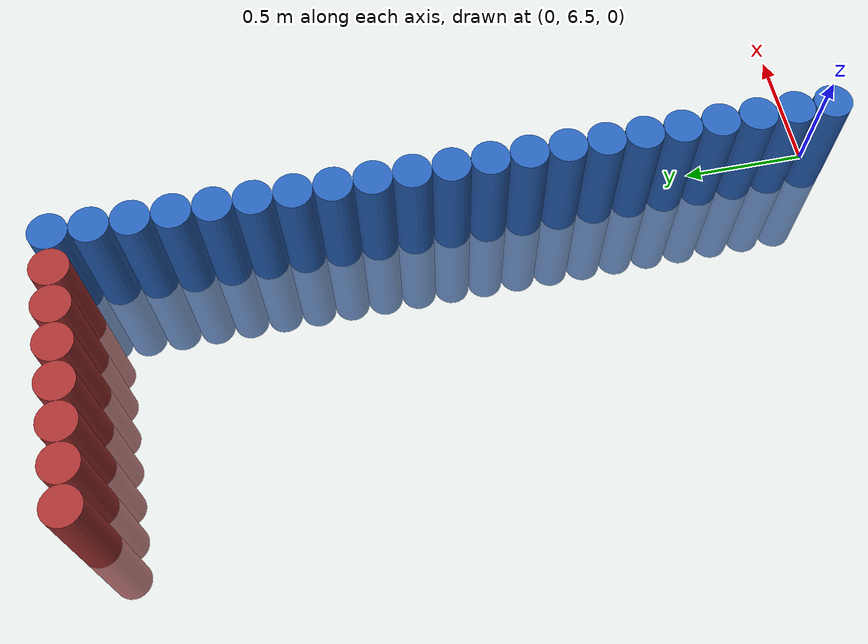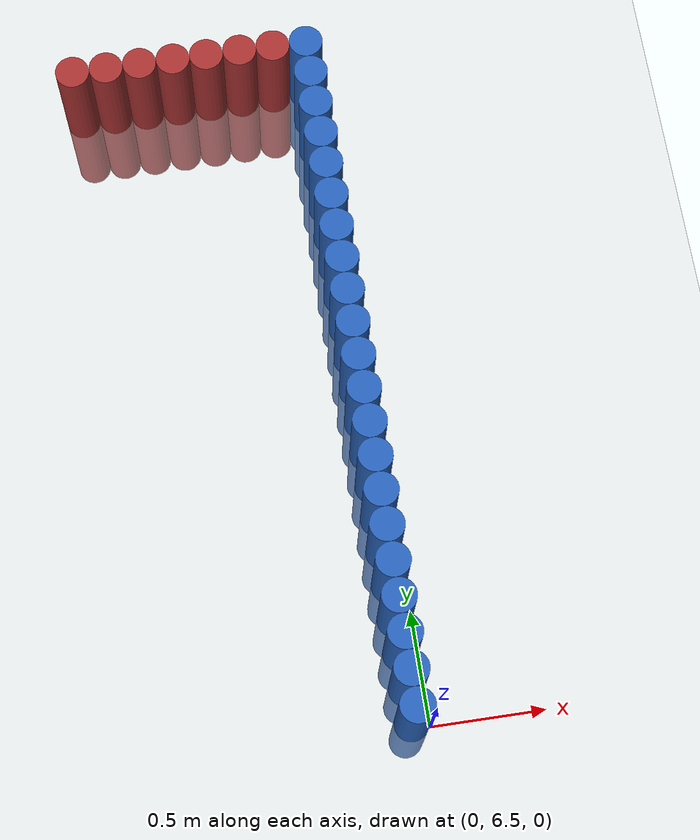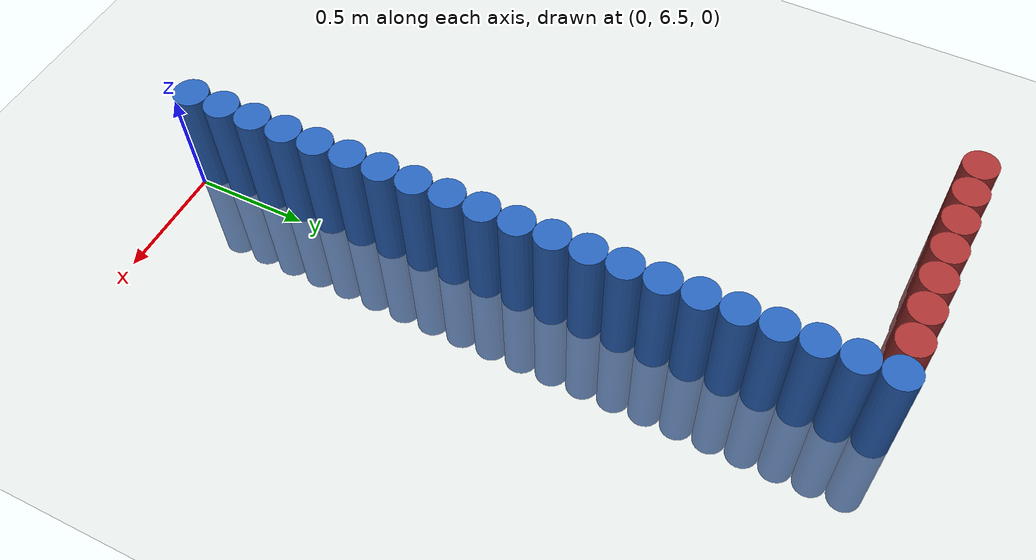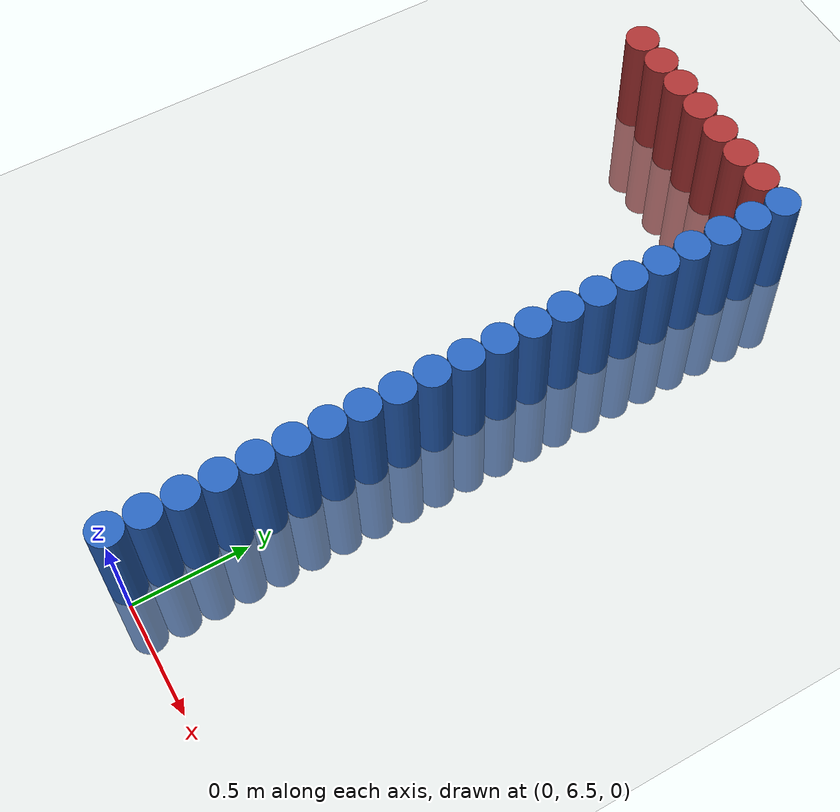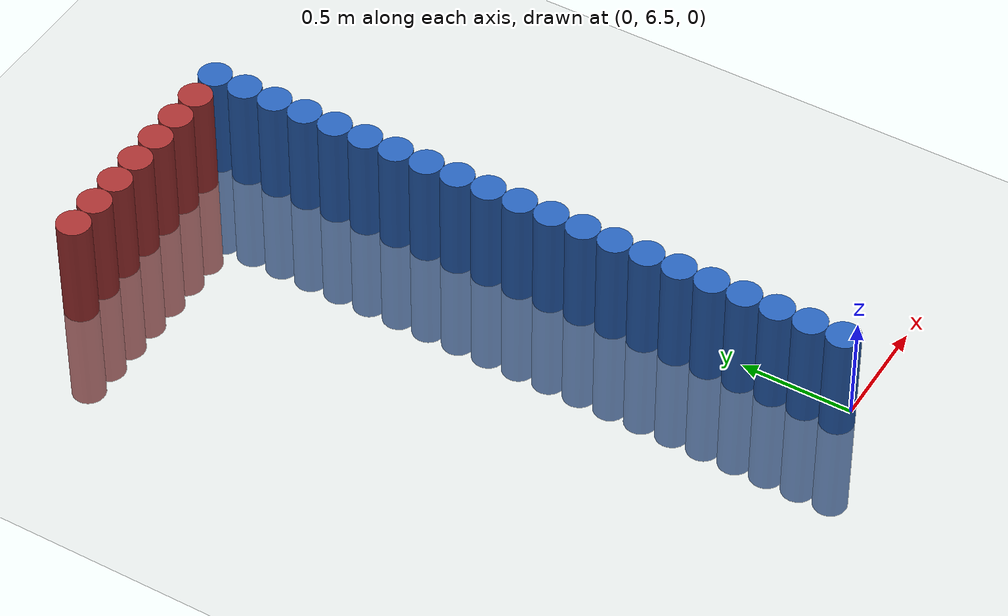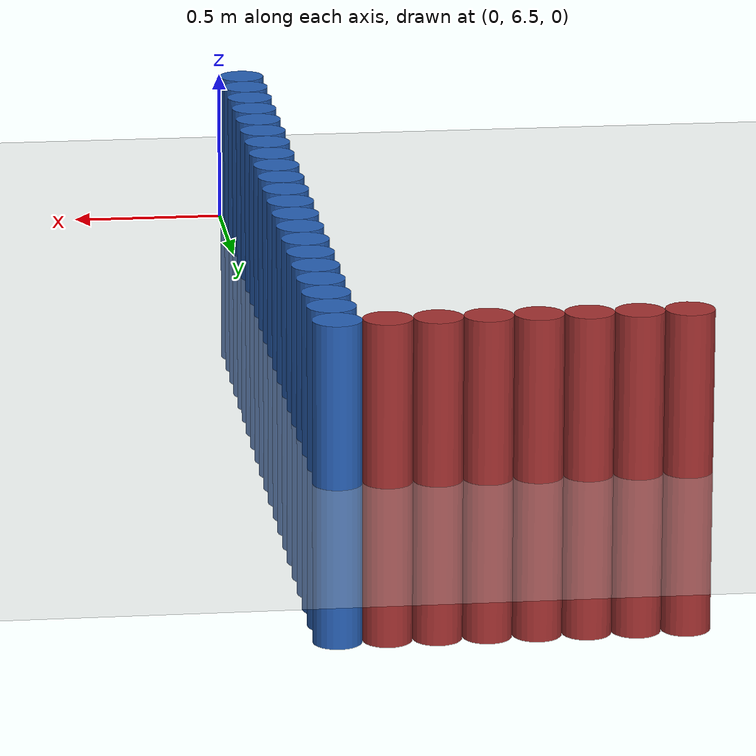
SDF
<sdf version="1.6">
 <world name="default">
  <model name="ground_plane">
   <static>1</static>
   <link name="link">
    <collision name="collision">
     <geometry><plane><normal>0 0 1</normal><size>100 100</size></plane></geometry>
     <surface><friction><ode><mu>100</mu><mu2>50</mu2></ode></friction></surface>
    </collision>
    <visual name="visual">
     <cast_shadows>0</cast_shadows>
     <geometry><plane><normal>0 0 1</normal><size>100 100</size></plane></geometry>
     <material>
      <script><uri>file://media/materials/scripts/gazebo.material</uri><name>Gazebo/Grey</name></script>
     </material>
    </visual>
   </link>
  </model>
  <model name="unit_cylinder_394">
   <static>1</static>
   <pose>-1.125000 9.525000 0.000000 0.000000 0.000000 0.000000</pose>
   <link name="link">
    <inertial>
     <mass>1</mass>
     <inertia><ixx>0.145833</ixx><ixy>0</ixy><ixz>0</ixz><iyy>0.145833</iyy><iyz>0</iyz><izz>0.125</izz></inertia>
    </inertial>
    <collision name="collision">
     <geometry><cylinder><radius>0.075000</radius><length>1</length></cylinder></geometry>
    </collision>
    <visual name="visual">
     <geometry><cylinder><radius>0.075000</radius><length>1</length></cylinder></geometry>
     <material>
      <ambient>0.648000 0.192000 0.192000 1</ambient>
      <diffuse>0.648000 0.192000 0.192000 1</diffuse>
     </material>
     <material>
      <script><name>Gazebo/Grey</name><uri>file://media/materials/scripts/gazebo.material</uri></script>
     </material>
    </visual>
   </link>
  </model>
  <model name="unit_cylinder_396">
   <static>1</static>
   <pose>-0.975000 9.525000 0.000000 0.000000 0.000000 0.000000</pose>
   <link name="link">
    <inertial>
     <mass>1</mass>
     <inertia><ixx>0.145833</ixx><ixy>0</ixy><ixz>0</ixz><iyy>0.145833</iyy><iyz>0</iyz><izz>0.125</izz></inertia>
    </inertial>
    <collision name="collision">
     <geometry><cylinder><radius>0.075000</radius><length>1</length></cylinder></geometry>
    </collision>
    <visual name="visual">
     <geometry><cylinder><radius>0.075000</radius><length>1</length></cylinder></geometry>
     <material>
      <ambient>0.648000 0.192000 0.192000 1</ambient>
      <diffuse>0.648000 0.192000 0.192000 1</diffuse>
     </material>
     <material>
      <script><name>Gazebo/Grey</name><uri>file://media/materials/scripts/gazebo.material</uri></script>
     </material>
    </visual>
   </link>
  </model>
  <model name="unit_cylinder_398">
   <static>1</static>
   <pose>-0.825000 9.525000 0.000000 0.000000 0.000000 0.000000</pose>
   <link name="link">
    <inertial>
     <mass>1</mass>
     <inertia><ixx>0.145833</ixx><ixy>0</ixy><ixz>0</ixz><iyy>0.145833</iyy><iyz>0</iyz><izz>0.125</izz></inertia>
    </inertial>
    <collision name="collision">
     <geometry><cylinder><radius>0.075000</radius><length>1</length></cylinder></geometry>
    </collision>
    <visual name="visual">
     <geometry><cylinder><radius>0.075000</radius><length>1</length></cylinder></geometry>
     <material>
      <ambient>0.648000 0.192000 0.192000 1</ambient>
      <diffuse>0.648000 0.192000 0.192000 1</diffuse>
     </material>
     <material>
      <script><name>Gazebo/Grey</name><uri>file://media/materials/scripts/gazebo.material</uri></script>
     </material>
    </visual>
   </link>
  </model>
  <model name="unit_cylinder_400">
   <static>1</static>
   <pose>-0.675000 9.525000 0.000000 0.000000 0.000000 0.000000</pose>
   <link name="link">
    <inertial>
     <mass>1</mass>
     <inertia><ixx>0.145833</ixx><ixy>0</ixy><ixz>0</ixz><iyy>0.145833</iyy><iyz>0</iyz><izz>0.125</izz></inertia>
    </inertial>
    <collision name="collision">
     <geometry><cylinder><radius>0.075000</radius><length>1</length></cylinder></geometry>
    </collision>
    <visual name="visual">
     <geometry><cylinder><radius>0.075000</radius><length>1</length></cylinder></geometry>
     <material>
      <ambient>0.648000 0.192000 0.192000 1</ambient>
      <diffuse>0.648000 0.192000 0.192000 1</diffuse>
     </material>
     <material>
      <script><name>Gazebo/Grey</name><uri>file://media/materials/scripts/gazebo.material</uri></script>
     </material>
    </visual>
   </link>
  </model>
  <model name="unit_cylinder_402">
   <static>1</static>
   <pose>-0.525000 9.525000 0.000000 0.000000 0.000000 0.000000</pose>
   <link name="link">
    <inertial>
     <mass>1</mass>
     <inertia><ixx>0.145833</ixx><ixy>0</ixy><ixz>0</ixz><iyy>0.145833</iyy><iyz>0</iyz><izz>0.125</izz></inertia>
    </inertial>
    <collision name="collision">
     <geometry><cylinder><radius>0.075000</radius><length>1</length></cylinder></geometry>
    </collision>
    <visual name="visual">
     <geometry><cylinder><radius>0.075000</radius><length>1</length></cylinder></geometry>
     <material>
      <ambient>0.648000 0.192000 0.192000 1</ambient>
      <diffuse>0.648000 0.192000 0.192000 1</diffuse>
     </material>
     <material>
      <script><name>Gazebo/Grey</name><uri>file://media/materials/scripts/gazebo.material</uri></script>
     </material>
    </visual>
   </link>
  </model>
  <model name="unit_cylinder_404">
   <static>1</static>
   <pose>-0.375000 9.525000 0.000000 0.000000 0.000000 0.000000</pose>
   <link name="link">
    <inertial>
     <mass>1</mass>
     <inertia><ixx>0.145833</ixx><ixy>0</ixy><ixz>0</ixz><iyy>0.145833</iyy><iyz>0</iyz><izz>0.125</izz></inertia>
    </inertial>
    <collision name="collision">
     <geometry><cylinder><radius>0.075000</radius><length>1</length></cylinder></geometry>
    </collision>
    <visual name="visual">
     <geometry><cylinder><radius>0.075000</radius><length>1</length></cylinder></geometry>
     <material>
      <ambient>0.648000 0.192000 0.192000 1</ambient>
      <diffuse>0.648000 0.192000 0.192000 1</diffuse>
     </material>
     <material>
      <script><name>Gazebo/Grey</name><uri>file://media/materials/scripts/gazebo.material</uri></script>
     </material>
    </visual>
   </link>
  </model>
  <model name="unit_cylinder_406">
   <static>1</static>
   <pose>-0.225000 9.525000 0.000000 0.000000 0.000000 0.000000</pose>
   <link name="link">
    <inertial>
     <mass>1</mass>
     <inertia><ixx>0.145833</ixx><ixy>0</ixy><ixz>0</ixz><iyy>0.145833</iyy><iyz>0</iyz><izz>0.125</izz></inertia>
    </inertial>
    <collision name="collision">
     <geometry><cylinder><radius>0.075000</radius><length>1</length></cylinder></geometry>
    </collision>
    <visual name="visual">
     <geometry><cylinder><radius>0.075000</radius><length>1</length></cylinder></geometry>
     <material>
      <ambient>0.648000 0.192000 0.192000 1</ambient>
      <diffuse>0.648000 0.192000 0.192000 1</diffuse>
     </material>
     <material>
      <script><name>Gazebo/Grey</name><uri>file://media/materials/scripts/gazebo.material</uri></script>
     </material>
    </visual>
   </link>
  </model>
  <model name="unit_cylinder_416">
   <static>1</static>
   <pose>-0.075000 6.525000 0.000000 0.000000 0.000000 0.000000</pose>
   <link name="link">
    <inertial>
     <mass>1</mass>
     <inertia><ixx>0.145833</ixx><ixy>0</ixy><ixz>0</ixz><iyy>0.145833</iyy><iyz>0</iyz><izz>0.125</izz></inertia>
    </inertial>
    <collision name="collision">
     <geometry><cylinder><radius>0.075000</radius><length>1</length></cylinder></geometry>
    </collision>
    <visual name="visual">
     <geometry><cylinder><radius>0.075000</radius><length>1</length></cylinder></geometry>
     <material>
      <ambient>0.152000 0.379000 0.720000 1</ambient>
      <diffuse>0.152000 0.379000 0.720000 1</diffuse>
     </material>
     <material>
      <script><name>Gazebo/Grey</name><uri>file://media/materials/scripts/gazebo.material</uri></script>
     </material>
    </visual>
   </link>
  </model>
  <model name="unit_cylinder_417">
   <static>1</static>
   <pose>-0.075000 6.675000 0.000000 0.000000 0.000000 0.000000</pose>
   <link name="link">
    <inertial>
     <mass>1</mass>
     <inertia><ixx>0.145833</ixx><ixy>0</ixy><ixz>0</ixz><iyy>0.145833</iyy><iyz>0</iyz><izz>0.125</izz></inertia>
    </inertial>
    <collision name="collision">
     <geometry><cylinder><radius>0.075000</radius><length>1</length></cylinder></geometry>
    </collision>
    <visual name="visual">
     <geometry><cylinder><radius>0.075000</radius><length>1</length></cylinder></geometry>
     <material>
      <ambient>0.152000 0.379000 0.720000 1</ambient>
      <diffuse>0.152000 0.379000 0.720000 1</diffuse>
     </material>
     <material>
      <script><name>Gazebo/Grey</name><uri>file://media/materials/scripts/gazebo.material</uri></script>
     </material>
    </visual>
   </link>
  </model>
  <model name="unit_cylinder_418">
   <static>1</static>
   <pose>-0.075000 6.825000 0.000000 0.000000 0.000000 0.000000</pose>
   <link name="link">
    <inertial>
     <mass>1</mass>
     <inertia><ixx>0.145833</ixx><ixy>0</ixy><ixz>0</ixz><iyy>0.145833</iyy><iyz>0</iyz><izz>0.125</izz></inertia>
    </inertial>
    <collision name="collision">
     <geometry><cylinder><radius>0.075000</radius><length>1</length></cylinder></geometry>
    </collision>
    <visual name="visual">
     <geometry><cylinder><radius>0.075000</radius><length>1</length></cylinder></geometry>
     <material>
      <ambient>0.152000 0.379000 0.720000 1</ambient>
      <diffuse>0.152000 0.379000 0.720000 1</diffuse>
     </material>
     <material>
      <script><name>Gazebo/Grey</name><uri>file://media/materials/scripts/gazebo.material</uri></script>
     </material>
    </visual>
   </link>
  </model>
  <model name="unit_cylinder_419">
   <static>1</static>
   <pose>-0.075000 6.975000 0.000000 0.000000 0.000000 0.000000</pose>
   <link name="link">
    <inertial>
     <mass>1</mass>
     <inertia><ixx>0.145833</ixx><ixy>0</ixy><ixz>0</ixz><iyy>0.145833</iyy><iyz>0</iyz><izz>0.125</izz></inertia>
    </inertial>
    <collision name="collision">
     <geometry><cylinder><radius>0.075000</radius><length>1</length></cylinder></geometry>
    </collision>
    <visual name="visual">
     <geometry><cylinder><radius>0.075000</radius><length>1</length></cylinder></geometry>
     <material>
      <ambient>0.152000 0.379000 0.720000 1</ambient>
      <diffuse>0.152000 0.379000 0.720000 1</diffuse>
     </material>
     <material>
      <script><name>Gazebo/Grey</name><uri>file://media/materials/scripts/gazebo.material</uri></script>
     </material>
    </visual>
   </link>
  </model>
  <model name="unit_cylinder_420">
   <static>1</static>
   <pose>-0.075000 7.125000 0.000000 0.000000 0.000000 0.000000</pose>
   <link name="link">
    <inertial>
     <mass>1</mass>
     <inertia><ixx>0.145833</ixx><ixy>0</ixy><ixz>0</ixz><iyy>0.145833</iyy><iyz>0</iyz><izz>0.125</izz></inertia>
    </inertial>
    <collision name="collision">
     <geometry><cylinder><radius>0.075000</radius><length>1</length></cylinder></geometry>
    </collision>
    <visual name="visual">
     <geometry><cylinder><radius>0.075000</radius><length>1</length></cylinder></geometry>
     <material>
      <ambient>0.152000 0.379000 0.720000 1</ambient>
      <diffuse>0.152000 0.379000 0.720000 1</diffuse>
     </material>
     <material>
      <script><name>Gazebo/Grey</name><uri>file://media/materials/scripts/gazebo.material</uri></script>
     </material>
    </visual>
   </link>
  </model>
  <model name="unit_cylinder_421">
   <static>1</static>
   <pose>-0.075000 7.275000 0.000000 0.000000 0.000000 0.000000</pose>
   <link name="link">
    <inertial>
     <mass>1</mass>
     <inertia><ixx>0.145833</ixx><ixy>0</ixy><ixz>0</ixz><iyy>0.145833</iyy><iyz>0</iyz><izz>0.125</izz></inertia>
    </inertial>
    <collision name="collision">
     <geometry><cylinder><radius>0.075000</radius><length>1</length></cylinder></geometry>
    </collision>
    <visual name="visual">
     <geometry><cylinder><radius>0.075000</radius><length>1</length></cylinder></geometry>
     <material>
      <ambient>0.152000 0.379000 0.720000 1</ambient>
      <diffuse>0.152000 0.379000 0.720000 1</diffuse>
     </material>
     <material>
      <script><name>Gazebo/Grey</name><uri>file://media/materials/scripts/gazebo.material</uri></script>
     </material>
    </visual>
   </link>
  </model>
  <model name="unit_cylinder_422">
   <static>1</static>
   <pose>-0.075000 7.425000 0.000000 0.000000 0.000000 0.000000</pose>
   <link name="link">
    <inertial>
     <mass>1</mass>
     <inertia><ixx>0.145833</ixx><ixy>0</ixy><ixz>0</ixz><iyy>0.145833</iyy><iyz>0</iyz><izz>0.125</izz></inertia>
    </inertial>
    <collision name="collision">
     <geometry><cylinder><radius>0.075000</radius><length>1</length></cylinder></geometry>
    </collision>
    <visual name="visual">
     <geometry><cylinder><radius>0.075000</radius><length>1</length></cylinder></geometry>
     <material>
      <ambient>0.152000 0.379000 0.720000 1</ambient>
      <diffuse>0.152000 0.379000 0.720000 1</diffuse>
     </material>
     <material>
      <script><name>Gazebo/Grey</name><uri>file://media/materials/scripts/gazebo.material</uri></script>
     </material>
    </visual>
   </link>
  </model>
  <model name="unit_cylinder_423">
   <static>1</static>
   <pose>-0.075000 7.575000 0.000000 0.000000 0.000000 0.000000</pose>
   <link name="link">
    <inertial>
     <mass>1</mass>
     <inertia><ixx>0.145833</ixx><ixy>0</ixy><ixz>0</ixz><iyy>0.145833</iyy><iyz>0</iyz><izz>0.125</izz></inertia>
    </inertial>
    <collision name="collision">
     <geometry><cylinder><radius>0.075000</radius><length>1</length></cylinder></geometry>
    </collision>
    <visual name="visual">
     <geometry><cylinder><radius>0.075000</radius><length>1</length></cylinder></geometry>
     <material>
      <ambient>0.152000 0.379000 0.720000 1</ambient>
      <diffuse>0.152000 0.379000 0.720000 1</diffuse>
     </material>
     <material>
      <script><name>Gazebo/Grey</name><uri>file://media/materials/scripts/gazebo.material</uri></script>
     </material>
    </visual>
   </link>
  </model>
  <model name="unit_cylinder_424">
   <static>1</static>
   <pose>-0.075000 7.725000 0.000000 0.000000 0.000000 0.000000</pose>
   <link name="link">
    <inertial>
     <mass>1</mass>
     <inertia><ixx>0.145833</ixx><ixy>0</ixy><ixz>0</ixz><iyy>0.145833</iyy><iyz>0</iyz><izz>0.125</izz></inertia>
    </inertial>
    <collision name="collision">
     <geometry><cylinder><radius>0.075000</radius><length>1</length></cylinder></geometry>
    </collision>
    <visual name="visual">
     <geometry><cylinder><radius>0.075000</radius><length>1</length></cylinder></geometry>
     <material>
      <ambient>0.152000 0.379000 0.720000 1</ambient>
      <diffuse>0.152000 0.379000 0.720000 1</diffuse>
     </material>
     <material>
      <script><name>Gazebo/Grey</name><uri>file://media/materials/scripts/gazebo.material</uri></script>
     </material>
    </visual>
   </link>
  </model>
  <model name="unit_cylinder_425">
   <static>1</static>
   <pose>-0.075000 7.875000 0.000000 0.000000 0.000000 0.000000</pose>
   <link name="link">
    <inertial>
     <mass>1</mass>
     <inertia><ixx>0.145833</ixx><ixy>0</ixy><ixz>0</ixz><iyy>0.145833</iyy><iyz>0</iyz><izz>0.125</izz></inertia>
    </inertial>
    <collision name="collision">
     <geometry><cylinder><radius>0.075000</radius><length>1</length></cylinder></geometry>
    </collision>
    <visual name="visual">
     <geometry><cylinder><radius>0.075000</radius><length>1</length></cylinder></geometry>
     <material>
      <ambient>0.152000 0.379000 0.720000 1</ambient>
      <diffuse>0.152000 0.379000 0.720000 1</diffuse>
     </material>
     <material>
      <script><name>Gazebo/Grey</name><uri>file://media/materials/scripts/gazebo.material</uri></script>
     </material>
    </visual>
   </link>
  </model>
  <model name="unit_cylinder_426">
   <static>1</static>
   <pose>-0.075000 8.025000 0.000000 0.000000 0.000000 0.000000</pose>
   <link name="link">
    <inertial>
     <mass>1</mass>
     <inertia><ixx>0.145833</ixx><ixy>0</ixy><ixz>0</ixz><iyy>0.145833</iyy><iyz>0</iyz><izz>0.125</izz></inertia>
    </inertial>
    <collision name="collision">
     <geometry><cylinder><radius>0.075000</radius><length>1</length></cylinder></geometry>
    </collision>
    <visual name="visual">
     <geometry><cylinder><radius>0.075000</radius><length>1</length></cylinder></geometry>
     <material>
      <ambient>0.152000 0.379000 0.720000 1</ambient>
      <diffuse>0.152000 0.379000 0.720000 1</diffuse>
     </material>
     <material>
      <script><name>Gazebo/Grey</name><uri>file://media/materials/scripts/gazebo.material</uri></script>
     </material>
    </visual>
   </link>
  </model>
  <model name="unit_cylinder_427">
   <static>1</static>
   <pose>-0.075000 8.175000 0.000000 0.000000 0.000000 0.000000</pose>
   <link name="link">
    <inertial>
     <mass>1</mass>
     <inertia><ixx>0.145833</ixx><ixy>0</ixy><ixz>0</ixz><iyy>0.145833</iyy><iyz>0</iyz><izz>0.125</izz></inertia>
    </inertial>
    <collision name="collision">
     <geometry><cylinder><radius>0.075000</radius><length>1</length></cylinder></geometry>
    </collision>
    <visual name="visual">
     <geometry><cylinder><radius>0.075000</radius><length>1</length></cylinder></geometry>
     <material>
      <ambient>0.152000 0.379000 0.720000 1</ambient>
      <diffuse>0.152000 0.379000 0.720000 1</diffuse>
     </material>
     <material>
      <script><name>Gazebo/Grey</name><uri>file://media/materials/scripts/gazebo.material</uri></script>
     </material>
    </visual>
   </link>
  </model>
  <model name="unit_cylinder_428">
   <static>1</static>
   <pose>-0.075000 8.325000 0.000000 0.000000 0.000000 0.000000</pose>
   <link name="link">
    <inertial>
     <mass>1</mass>
     <inertia><ixx>0.145833</ixx><ixy>0</ixy><ixz>0</ixz><iyy>0.145833</iyy><iyz>0</iyz><izz>0.125</izz></inertia>
    </inertial>
    <collision name="collision">
     <geometry><cylinder><radius>0.075000</radius><length>1</length></cylinder></geometry>
    </collision>
    <visual name="visual">
     <geometry><cylinder><radius>0.075000</radius><length>1</length></cylinder></geometry>
     <material>
      <ambient>0.152000 0.379000 0.720000 1</ambient>
      <diffuse>0.152000 0.379000 0.720000 1</diffuse>
     </material>
     <material>
      <script><name>Gazebo/Grey</name><uri>file://media/materials/scripts/gazebo.material</uri></script>
     </material>
    </visual>
   </link>
  </model>
  <model name="unit_cylinder_429">
   <static>1</static>
   <pose>-0.075000 8.475000 0.000000 0.000000 0.000000 0.000000</pose>
   <link name="link">
    <inertial>
     <mass>1</mass>
     <inertia><ixx>0.145833</ixx><ixy>0</ixy><ixz>0</ixz><iyy>0.145833</iyy><iyz>0</iyz><izz>0.125</izz></inertia>
    </inertial>
    <collision name="collision">
     <geometry><cylinder><radius>0.075000</radius><length>1</length></cylinder></geometry>
    </collision>
    <visual name="visual">
     <geometry><cylinder><radius>0.075000</radius><length>1</length></cylinder></geometry>
     <material>
      <ambient>0.152000 0.379000 0.720000 1</ambient>
      <diffuse>0.152000 0.379000 0.720000 1</diffuse>
     </material>
     <material>
      <script><name>Gazebo/Grey</name><uri>file://media/materials/scripts/gazebo.material</uri></script>
     </material>
    </visual>
   </link>
  </model>
  <model name="unit_cylinder_430">
   <static>1</static>
   <pose>-0.075000 8.625000 0.000000 0.000000 0.000000 0.000000</pose>
   <link name="link">
    <inertial>
     <mass>1</mass>
     <inertia><ixx>0.145833</ixx><ixy>0</ixy><ixz>0</ixz><iyy>0.145833</iyy><iyz>0</iyz><izz>0.125</izz></inertia>
    </inertial>
    <collision name="collision">
     <geometry><cylinder><radius>0.075000</radius><length>1</length></cylinder></geometry>
    </collision>
    <visual name="visual">
     <geometry><cylinder><radius>0.075000</radius><length>1</length></cylinder></geometry>
     <material>
      <ambient>0.152000 0.379000 0.720000 1</ambient>
      <diffuse>0.152000 0.379000 0.720000 1</diffuse>
     </material>
     <material>
      <script><name>Gazebo/Grey</name><uri>file://media/materials/scripts/gazebo.material</uri></script>
     </material>
    </visual>
   </link>
  </model>
  <model name="unit_cylinder_431">
   <static>1</static>
   <pose>-0.075000 8.775000 0.000000 0.000000 0.000000 0.000000</pose>
   <link name="link">
    <inertial>
     <mass>1</mass>
     <inertia><ixx>0.145833</ixx><ixy>0</ixy><ixz>0</ixz><iyy>0.145833</iyy><iyz>0</iyz><izz>0.125</izz></inertia>
    </inertial>
    <collision name="collision">
     <geometry><cylinder><radius>0.075000</radius><length>1</length></cylinder></geometry>
    </collision>
    <visual name="visual">
     <geometry><cylinder><radius>0.075000</radius><length>1</length></cylinder></geometry>
     <material>
      <ambient>0.152000 0.379000 0.720000 1</ambient>
      <diffuse>0.152000 0.379000 0.720000 1</diffuse>
     </material>
     <material>
      <script><name>Gazebo/Grey</name><uri>file://media/materials/scripts/gazebo.material</uri></script>
     </material>
    </visual>
   </link>
  </model>
  <model name="unit_cylinder_432">
   <static>1</static>
   <pose>-0.075000 8.925000 0.000000 0.000000 0.000000 0.000000</pose>
   <link name="link">
    <inertial>
     <mass>1</mass>
     <inertia><ixx>0.145833</ixx><ixy>0</ixy><ixz>0</ixz><iyy>0.145833</iyy><iyz>0</iyz><izz>0.125</izz></inertia>
    </inertial>
    <collision name="collision">
     <geometry><cylinder><radius>0.075000</radius><length>1</length></cylinder></geometry>
    </collision>
    <visual name="visual">
     <geometry><cylinder><radius>0.075000</radius><length>1</length></cylinder></geometry>
     <material>
      <ambient>0.152000 0.379000 0.720000 1</ambient>
      <diffuse>0.152000 0.379000 0.720000 1</diffuse>
     </material>
     <material>
      <script><name>Gazebo/Grey</name><uri>file://media/materials/scripts/gazebo.material</uri></script>
     </material>
    </visual>
   </link>
  </model>
  <model name="unit_cylinder_433">
   <static>1</static>
   <pose>-0.075000 9.075000 0.000000 0.000000 0.000000 0.000000</pose>
   <link name="link">
    <inertial>
     <mass>1</mass>
     <inertia><ixx>0.145833</ixx><ixy>0</ixy><ixz>0</ixz><iyy>0.145833</iyy><iyz>0</iyz><izz>0.125</izz></inertia>
    </inertial>
    <collision name="collision">
     <geometry><cylinder><radius>0.075000</radius><length>1</length></cylinder></geometry>
    </collision>
    <visual name="visual">
     <geometry><cylinder><radius>0.075000</radius><length>1</length></cylinder></geometry>
     <material>
      <ambient>0.152000 0.379000 0.720000 1</ambient>
      <diffuse>0.152000 0.379000 0.720000 1</diffuse>
     </material>
     <material>
      <script><name>Gazebo/Grey</name><uri>file://media/materials/scripts/gazebo.material</uri></script>
     </material>
    </visual>
   </link>
  </model>
  <model name="unit_cylinder_434">
   <static>1</static>
   <pose>-0.075000 9.225000 0.000000 0.000000 0.000000 0.000000</pose>
   <link name="link">
    <inertial>
     <mass>1</mass>
     <inertia><ixx>0.145833</ixx><ixy>0</ixy><ixz>0</ixz><iyy>0.145833</iyy><iyz>0</iyz><izz>0.125</izz></inertia>
    </inertial>
    <collision name="collision">
     <geometry><cylinder><radius>0.075000</radius><length>1</length></cylinder></geometry>
    </collision>
    <visual name="visual">
     <geometry><cylinder><radius>0.075000</radius><length>1</length></cylinder></geometry>
     <material>
      <ambient>0.152000 0.379000 0.720000 1</ambient>
      <diffuse>0.152000 0.379000 0.720000 1</diffuse>
     </material>
     <material>
      <script><name>Gazebo/Grey</name><uri>file://media/materials/scripts/gazebo.material</uri></script>
     </material>
    </visual>
   </link>
  </model>
  <model name="unit_cylinder_435">
   <static>1</static>
   <pose>-0.075000 9.375000 0.000000 0.000000 0.000000 0.000000</pose>
   <link name="link">
    <inertial>
     <mass>1</mass>
     <inertia><ixx>0.145833</ixx><ixy>0</ixy><ixz>0</ixz><iyy>0.145833</iyy><iyz>0</iyz><izz>0.125</izz></inertia>
    </inertial>
    <collision name="collision">
     <geometry><cylinder><radius>0.075000</radius><length>1</length></cylinder></geometry>
    </collision>
    <visual name="visual">
     <geometry><cylinder><radius>0.075000</radius><length>1</length></cylinder></geometry>
     <material>
      <ambient>0.152000 0.379000 0.720000 1</ambient>
      <diffuse>0.152000 0.379000 0.720000 1</diffuse>
     </material>
     <material>
      <script><name>Gazebo/Grey</name><uri>file://media/materials/scripts/gazebo.material</uri></script>
     </material>
    </visual>
   </link>
  </model>
  <model name="unit_cylinder_436">
   <static>1</static>
   <pose>-0.075000 9.525000 0.000000 0.000000 0.000000 0.000000</pose>
   <link name="link">
    <inertial>
     <mass>1</mass>
     <inertia><ixx>0.145833</ixx><ixy>0</ixy><ixz>0</ixz><iyy>0.145833</iyy><iyz>0</iyz><izz>0.125</izz></inertia>
    </inertial>
    <collision name="collision">
     <geometry><cylinder><radius>0.075000</radius><length>1</length></cylinder></geometry>
    </collision>
    <visual name="visual">
     <geometry><cylinder><radius>0.075000</radius><length>1</length></cylinder></geometry>
     <material>
      <ambient>0.152000 0.379000 0.720000 1</ambient>
      <diffuse>0.152000 0.379000 0.720000 1</diffuse>
     </material>
     <material>
      <script><name>Gazebo/Grey</name><uri>file://media/materials/scripts/gazebo.material</uri></script>
     </material>
    </visual>
   </link>
  </model>
 </world>
</sdf>
